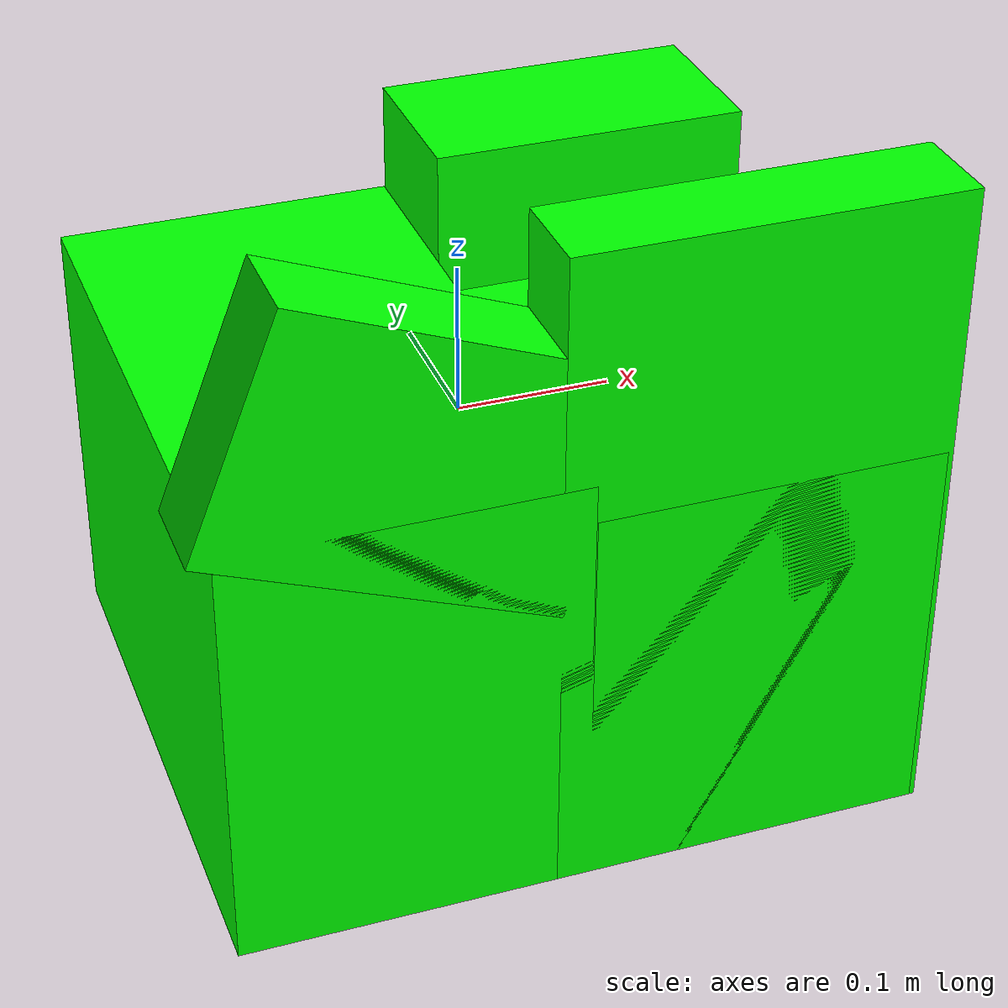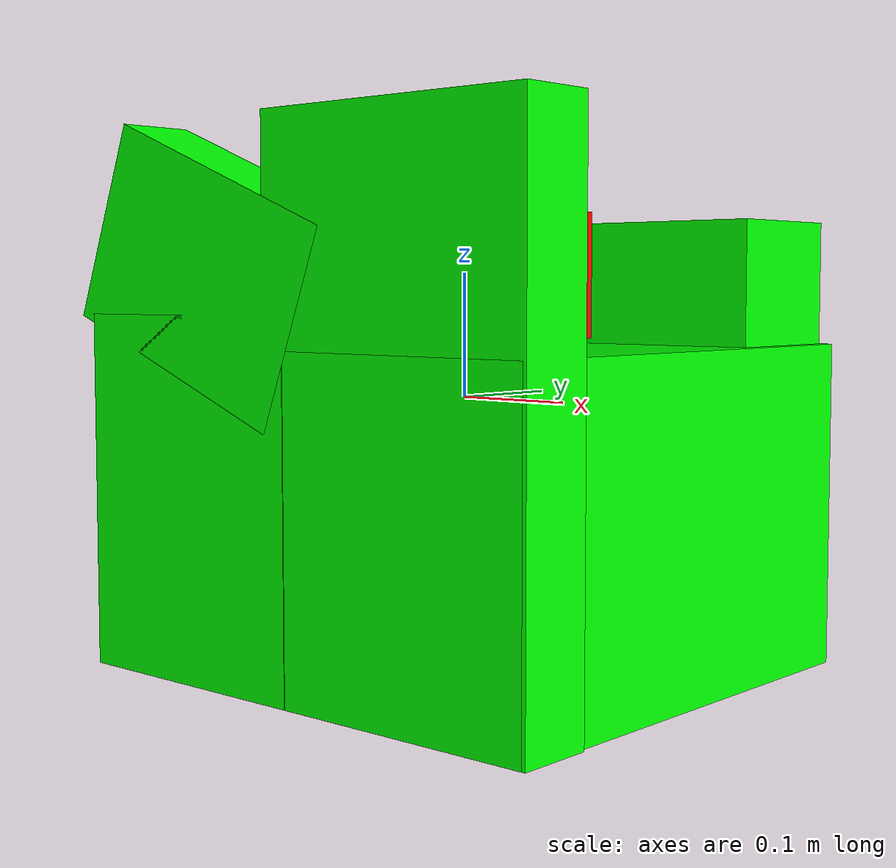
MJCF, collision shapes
<mujoco model="coffee_machine_3">
  <compiler autolimits="true" boundmass="0.01" angle="radian"/>
  <default>
    <default class="/">
      <default class="__VISUAL_MJT__">
        <geom contype="0" conaffinity="0" group="0"/>
      </default>
      <default class="__STRUCTURAL_MJT__">
        <geom contype="8" conaffinity="15" group="4" friction="0.90000000000000002 0.90000000000000002 0.001" solref="0.025000000000000001 1" solimp="0.998 0.998 0.001"/>
      </default>
      <default class="__DYNAMIC_MJT__">
        <geom contype="1" conaffinity="15" group="4" friction="0.90000000000000002 0.90000000000000002 0.001" solref="0.025000000000000001 1" solimp="0.998 0.998 0.001"/>
      </default>
    </default>
  </default>
  <asset>
    <material name="material_coffee_machine_backup_mat" class="/" specular="0.5" shininess="0.5" rgba="0.5 0.5 0.5 1"/>
    <material name="material_Coffee_Machine_Readout_Mat_Off" class="/" specular="0.5" shininess="0.5" rgba="0 0 0 1"/>
    <texture name="Coffee_Machine_Decal_Mat" type="2d" file="Coffee_Machine_Decal_AlbedoTransparency.png"/>
    <material name="material_Coffee_Machine_Decal_Mat" class="/" texture="Coffee_Machine_Decal_Mat" specular="0.5" shininess="0.5" rgba="1 1 1 1"/>
    <texture name="Coffee_Machine_Metal_Mat" type="2d" file="MetalBumpy_AlbedoTransparency.png"/>
    <material name="material_Coffee_Machine_Metal_Mat" class="/" texture="Coffee_Machine_Metal_Mat" specular="0.5" shininess="0.5" rgba="0.66176469999999998 0.66176469999999998 0.66176469999999998 1"/>
    <texture name="Coffee_Machine_Secondary3_Color_Mat" type="2d" file="BrushedIron_AlbedoTransparency.png"/>
    <material name="material_Coffee_Machine_Secondary3_Color_Mat" class="/" texture="Coffee_Machine_Secondary3_Color_Mat" specular="0.5" shininess="0.5" rgba="0.2573529 0.2573529 0.2573529 1"/>
    <texture name="Coffee_Machine_Primary3_Color_Mat" type="2d" file="BumpyPlastic_Albedo.png"/>
    <material name="material_Coffee_Machine_Primary3_Color_Mat" class="/" texture="Coffee_Machine_Primary3_Color_Mat" specular="0.5" shininess="0.5" rgba="0.31617650000000003 0.030222740000000001 0.030222740000000001 1"/>
    <mesh name="coffee_machine_3_coffee_machine_23_0" class="/" file="coffee_machine_3_coffee_machine_23/coffee_machine_3_coffee_machine_23_0.obj" scale="1 1 1"/>
    <mesh name="coffee_machine_3_coffee_machine_23_1" class="/" file="coffee_machine_3_coffee_machine_23/coffee_machine_3_coffee_machine_23_1.obj" scale="1 1 1"/>
    <mesh name="coffee_machine_3_coffee_machine_23_2" class="/" file="coffee_machine_3_coffee_machine_23/coffee_machine_3_coffee_machine_23_2.obj" scale="1 1 1"/>
    <mesh name="coffee_machine_3_coffee_machine_23_3" class="/" file="coffee_machine_3_coffee_machine_23/coffee_machine_3_coffee_machine_23_3.obj" scale="1 1 1"/>
    <mesh name="coffee_machine_3_coffee_machine_23_4" class="/" file="coffee_machine_3_coffee_machine_23/coffee_machine_3_coffee_machine_23_4.obj" scale="1 1 1"/>
    <mesh name="coffee_machine_3_coffee_machine_23_5" class="/" file="coffee_machine_3_coffee_machine_23/coffee_machine_3_coffee_machine_23_5.obj" scale="1 1 1"/>
  </asset>
  <worldbody>
    <body name="coffee_machine_3">
      <joint name="coffee_machine_3_free" class="/" type="free" pos="0 0 0" axis="0 0 1" stiffness="0" range="0 0" armature="0" damping="0.10000000000000001" frictionloss="0"/>
      <body name="coffee_machine_3_coffee_machine_23" pos="0.0021800000000000001 -0.20865999992847442 -0.075950000000000004" quat="1 0 0 0">
        <geom name="coffee_machine_3_coffee_machine_23_0" class="__VISUAL_MJT__" type="mesh" material="material_coffee_machine_backup_mat" shellinertia="true" mesh="coffee_machine_3_coffee_machine_23_0"/>
        <geom name="coffee_machine_3_coffee_machine_23_1" class="__VISUAL_MJT__" type="mesh" material="material_Coffee_Machine_Readout_Mat_Off" shellinertia="false" mesh="coffee_machine_3_coffee_machine_23_1"/>
        <geom name="coffee_machine_3_coffee_machine_23_2" class="__VISUAL_MJT__" type="mesh" material="material_Coffee_Machine_Decal_Mat" shellinertia="true" mesh="coffee_machine_3_coffee_machine_23_2"/>
        <geom name="coffee_machine_3_coffee_machine_23_3" class="__VISUAL_MJT__" type="mesh" material="material_Coffee_Machine_Metal_Mat" shellinertia="false" mesh="coffee_machine_3_coffee_machine_23_3"/>
        <geom name="coffee_machine_3_coffee_machine_23_4" class="__VISUAL_MJT__" type="mesh" material="material_Coffee_Machine_Secondary3_Color_Mat" shellinertia="false" mesh="coffee_machine_3_coffee_machine_23_4"/>
        <geom name="coffee_machine_3_coffee_machine_23_5" class="__VISUAL_MJT__" type="mesh" material="material_Coffee_Machine_Primary3_Color_Mat" shellinertia="false" mesh="coffee_machine_3_coffee_machine_23_5"/>
        <site name="coffee_machine_3_Receptacle_0" class="/" type="box" rgba="1 0 0 1" size="0.047687742859125137 0.051209032535552979 0.045145675539970398" pos="0.10970000177621841 0.11360903084278107 0.17319999635219574" quat="1 0 0 0"/>
        <geom name="coffee_machine_3_PrimitiveCollider_0" class="__DYNAMIC_MJT__" type="box" size="0.11030742526054382 0.19546139240264893 0.14121127128601074" rgba="0 1 0 1" pos="-0.10243681073188782 0.19546139240264893 0.0026066303253173828" quat="1 0 0 0"/>
        <geom name="coffee_machine_3_PrimitiveCollider_1" class="__DYNAMIC_MJT__" type="box" size="0.11544103175401688 0.030264735221862793 0.079482629895210266" rgba="0 1 0 1" pos="-0.090399406850337982 0.030264744535088539 0.1747305691242218" quat="0.98301553726196289 -3.5149907429143923e-09 0.18352268636226654 3.3724870007745267e-08"/>
        <geom name="coffee_machine_3_PrimitiveCollider_2" class="__DYNAMIC_MJT__" type="box" size="0.10966968536376953 0.19546139240264893 0.12909317016601562" rgba="0 1 0 1" pos="0.11823940277099609 0.19546139240264893 -0.0095114707946777344" quat="1 0 0 0"/>
        <geom name="coffee_machine_3_PrimitiveCollider_3" class="__DYNAMIC_MJT__" type="box" size="0.10392951965332031 0.056103765964508057 0.1772465705871582" rgba="0 1 0 1" pos="0.11249923706054688 0.33481901884078979 0.038641929626464844" quat="1 0 0 0"/>
        <geom name="coffee_machine_3_PrimitiveCollider_4" class="__DYNAMIC_MJT__" type="box" size="0.12146902084350586 0.030592083930969238 0.21455740928649902" rgba="0 1 0 1" pos="0.10962915420532227 0.030592083930969238 0.075952768325805664" quat="1 0 0 0"/>
      </body>
    </body>
  </worldbody>
</mujoco>
